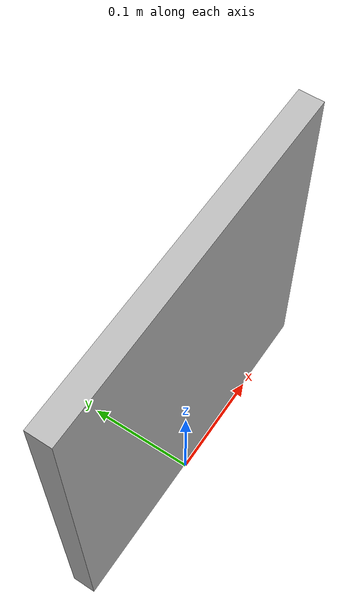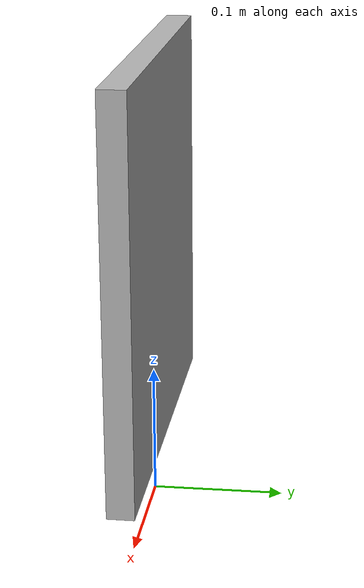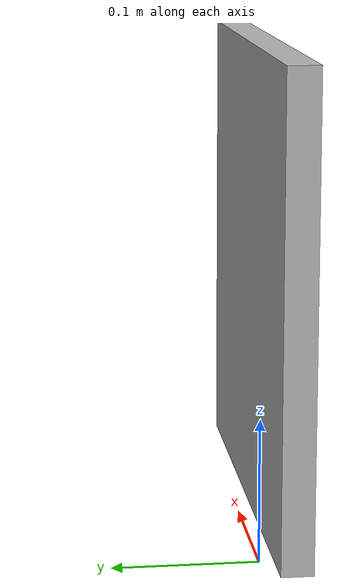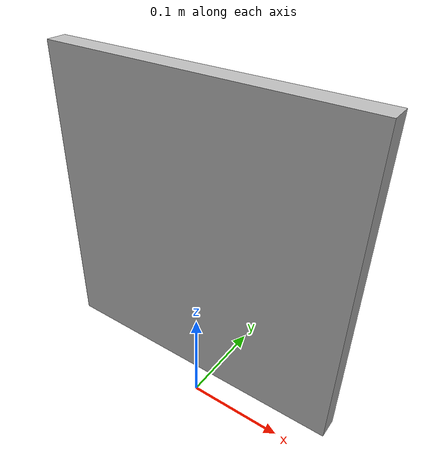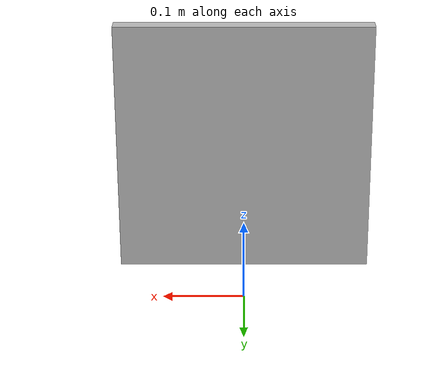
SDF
<?xml version="1.0" ?>
<sdf version="1.6">
  <model name="right_sign">
    <static>true</static>

    <link name="sign">
      <pose>0 0 0.2 0 0 0</pose>

      <collision name="collision">
        <geometry>
          <box>
            <size>0.3 0.02 0.3</size>
          </box>
        </geometry>
      </collision>

      <visual name="visual">
        <geometry>
          <box>
            <size>0.3 0.02 0.3</size>
          </box>
        </geometry>

        <material>
          <script>
            <uri>model://right_sign/materials/scripts</uri>
            <uri>model://right_sign/materials/textures</uri>
            <name>RightSign/Material</name>
          </script>
        </material>
      </visual>
    </link>

  </model>
</sdf>
